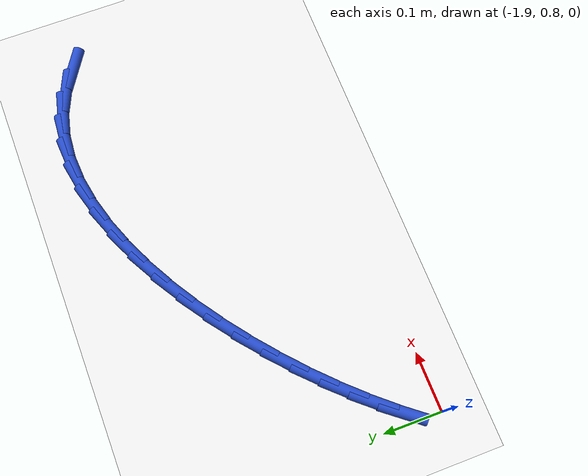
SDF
<sdf version="1.6">
 <world name="default">
  <model name="ground_plane">
   <static>1</static>
   <link name="link">
    <collision name="collision">
     <geometry><plane><normal>0 0 1</normal><size>100 100</size></plane></geometry>
     <surface><friction><ode><mu>100</mu><mu2>50</mu2></ode></friction></surface>
    </collision>
    <visual name="visual">
     <cast_shadows>0</cast_shadows>
     <geometry><plane><normal>0 0 1</normal><size>100 100</size></plane></geometry>
     <material>
      <script><uri>file://media/materials/scripts/gazebo.material</uri><name>Gazebo/WhiteGlow</name></script>
     </material>
    </visual>
   </link>
  </model>
  <model name="line">
   <link name="link_37">
    <pose>-1.1326526851818268 1.16700254844922 0.01 0 1.57 -0.5752461272479498</pose>
    <collision name="collision">
     <geometry><cylinder><radius>0.01</radius><length>0.08</length></cylinder></geometry>
    </collision>
    <visual name="visual">
     <material>
      <script><name>Gazebo/Blue</name><uri>file://media/materials/scripts/gazebo.material</uri></script>
     </material>
     <geometry><cylinder><radius>0.01</radius><length>0.08</length></cylinder></geometry>
    </visual>
   </link>
   <link name="link_38">
    <pose>-1.1695858407124322 1.1909498233782077 0.01 0 1.57 -0.41943407301285196</pose>
    <collision name="collision">
     <geometry><cylinder><radius>0.01</radius><length>0.08</length></cylinder></geometry>
    </collision>
    <visual name="visual">
     <material>
      <script><name>Gazebo/Blue</name><uri>file://media/materials/scripts/gazebo.material</uri></script>
     </material>
     <geometry><cylinder><radius>0.01</radius><length>0.08</length></cylinder></geometry>
    </visual>
   </link>
   <link name="link_39">
    <pose>-1.2085433452273298 1.2083207381532461 0.01 0 1.57 -0.24233388045073406</pose>
    <collision name="collision">
     <geometry><cylinder><radius>0.01</radius><length>0.08</length></cylinder></geometry>
    </collision>
    <visual name="visual">
     <material>
      <script><name>Gazebo/Blue</name><uri>file://media/materials/scripts/gazebo.material</uri></script>
     </material>
     <geometry><cylinder><radius>0.01</radius><length>0.08</length></cylinder></geometry>
    </visual>
   </link>
   <link name="link_40">
    <pose>-1.2496917714463065 1.218492290407449 0.01 0 1.57 -0.0798975234013154</pose>
    <collision name="collision">
     <geometry><cylinder><radius>0.01</radius><length>0.08</length></cylinder></geometry>
    </collision>
    <visual name="visual">
     <material>
      <script><name>Gazebo/Blue</name><uri>file://media/materials/scripts/gazebo.material</uri></script>
     </material>
     <geometry><cylinder><radius>0.01</radius><length>0.08</length></cylinder></geometry>
    </visual>
   </link>
   <link name="link_41">
    <pose>-1.2926835831193815 1.2219345575075304 0.01 0 1.57 0.061800199550257416</pose>
    <collision name="collision">
     <geometry><cylinder><radius>0.01</radius><length>0.08</length></cylinder></geometry>
    </collision>
    <visual name="visual">
     <material>
      <script><name>Gazebo/Blue</name><uri>file://media/materials/scripts/gazebo.material</uri></script>
     </material>
     <geometry><cylinder><radius>0.01</radius><length>0.08</length></cylinder></geometry>
    </visual>
   </link>
   <link name="link_42">
    <pose>-1.3371401974760173 1.2191836267994383 0.01 0 1.57 0.18256268368402495</pose>
    <collision name="collision">
     <geometry><cylinder><radius>0.01</radius><length>0.08</length></cylinder></geometry>
    </collision>
    <visual name="visual">
     <material>
      <script><name>Gazebo/Blue</name><uri>file://media/materials/scripts/gazebo.material</uri></script>
     </material>
     <geometry><cylinder><radius>0.01</radius><length>0.08</length></cylinder></geometry>
    </visual>
   </link>
   <link name="link_43">
    <pose>-1.3826830317456784 1.2107755856291218 0.01 0 1.57 0.28457789872275924</pose>
    <collision name="collision">
     <geometry><cylinder><radius>0.01</radius><length>0.08</length></cylinder></geometry>
    </collision>
    <visual name="visual">
     <material>
      <script><name>Gazebo/Blue</name><uri>file://media/materials/scripts/gazebo.material</uri></script>
     </material>
     <geometry><cylinder><radius>0.01</radius><length>0.08</length></cylinder></geometry>
    </visual>
   </link>
   <link name="link_44">
    <pose>-1.4289335031578272 1.1972465213425292 0.01 0 1.57 0.370886440779815</pose>
    <collision name="collision">
     <geometry><cylinder><radius>0.01</radius><length>0.08</length></cylinder></geometry>
    </collision>
    <visual name="visual">
     <material>
      <script><name>Gazebo/Blue</name><uri>file://media/materials/scripts/gazebo.material</uri></script>
     </material>
     <geometry><cylinder><radius>0.01</radius><length>0.08</length></cylinder></geometry>
    </visual>
   </link>
   <link name="link_45">
    <pose>-1.4755130289419285 1.1791325212856092 0.01 0 1.57 0.44451918354778513</pose>
    <collision name="collision">
     <geometry><cylinder><radius>0.01</radius><length>0.08</length></cylinder></geometry>
    </collision>
    <visual name="visual">
     <material>
      <script><name>Gazebo/Blue</name><uri>file://media/materials/scripts/gazebo.material</uri></script>
     </material>
     <geometry><cylinder><radius>0.01</radius><length>0.08</length></cylinder></geometry>
    </visual>
   </link>
   <link name="link_46">
    <pose>-1.522043026327444 1.1569696728043097 0.01 0 1.57 0.5081495995070204</pose>
    <collision name="collision">
     <geometry><cylinder><radius>0.01</radius><length>0.08</length></cylinder></geometry>
    </collision>
    <visual name="visual">
     <material>
      <script><name>Gazebo/Blue</name><uri>file://media/materials/scripts/gazebo.material</uri></script>
     </material>
     <geometry><cylinder><radius>0.01</radius><length>0.08</length></cylinder></geometry>
    </visual>
   </link>
   <link name="link_47">
    <pose>-1.5681449125438383 1.1312940632445805 0.01 0 1.57 0.5640228785743613</pose>
    <collision name="collision">
     <geometry><cylinder><radius>0.01</radius><length>0.08</length></cylinder></geometry>
    </collision>
    <visual name="visual">
     <material>
      <script><name>Gazebo/Blue</name><uri>file://media/materials/scripts/gazebo.material</uri></script>
     </material>
     <geometry><cylinder><radius>0.01</radius><length>0.08</length></cylinder></geometry>
    </visual>
   </link>
   <link name="link_48">
    <pose>-1.613440104820574 1.1026417799523693 0.01 0 1.57 0.6140038126901969</pose>
    <collision name="collision">
     <geometry><cylinder><radius>0.01</radius><length>0.08</length></cylinder></geometry>
    </collision>
    <visual name="visual">
     <material>
      <script><name>Gazebo/Blue</name><uri>file://media/materials/scripts/gazebo.material</uri></script>
     </material>
     <geometry><cylinder><radius>0.01</radius><length>0.08</length></cylinder></geometry>
    </visual>
   </link>
   <link name="link_49">
    <pose>-1.6575500203871159 1.0715489102736246 0.01 0 1.57 0.6596649655837512</pose>
    <collision name="collision">
     <geometry><cylinder><radius>0.01</radius><length>0.08</length></cylinder></geometry>
    </collision>
    <visual name="visual">
     <material>
      <script><name>Gazebo/Blue</name><uri>file://media/materials/scripts/gazebo.material</uri></script>
     </material>
     <geometry><cylinder><radius>0.01</radius><length>0.08</length></cylinder></geometry>
    </visual>
   </link>
   <link name="link_50">
    <pose>-1.7000960764729265 1.0385515415542952 0.01 0 1.57 0.7023843152716511</pose>
    <collision name="collision">
     <geometry><cylinder><radius>0.01</radius><length>0.08</length></cylinder></geometry>
    </collision>
    <visual name="visual">
     <material>
      <script><name>Gazebo/Blue</name><uri>file://media/materials/scripts/gazebo.material</uri></script>
     </material>
     <geometry><cylinder><radius>0.01</radius><length>0.08</length></cylinder></geometry>
    </visual>
   </link>
   <link name="link_51">
    <pose>-1.740699690307469 1.0041857611403295 0.01 0 1.57 0.7434476590716523</pose>
    <collision name="collision">
     <geometry><cylinder><radius>0.01</radius><length>0.08</length></cylinder></geometry>
    </collision>
    <visual name="visual">
     <material>
      <script><name>Gazebo/Blue</name><uri>file://media/materials/scripts/gazebo.material</uri></script>
     </material>
     <geometry><cylinder><radius>0.01</radius><length>0.08</length></cylinder></geometry>
    </visual>
   </link>
   <link name="link_52">
    <pose>-1.7789829456355228 0.9689869261398266 0.01 0 1.57 0.7843617866977304</pose>
    <collision name="collision">
     <geometry><cylinder><radius>0.01</radius><length>0.08</length></cylinder></geometry>
    </collision>
    <visual name="visual">
     <material>
      <script><name>Gazebo/Blue</name><uri>file://media/materials/scripts/gazebo.material</uri></script>
     </material>
     <geometry><cylinder><radius>0.01</radius><length>0.08</length></cylinder></geometry>
    </visual>
   </link>
   <link name="link_53">
    <pose>-1.8147190945266025 0.9333247728120583 0.01 0 1.57 0.8260778291966491</pose>
    <collision name="collision">
     <geometry><cylinder><radius>0.01</radius><length>0.08</length></cylinder></geometry>
    </collision>
    <visual name="visual">
     <material>
      <script><name>Gazebo/Blue</name><uri>file://media/materials/scripts/gazebo.material</uri></script>
     </material>
     <geometry><cylinder><radius>0.01</radius><length>0.08</length></cylinder></geometry>
    </visual>
   </link>
   <link name="link_54">
    <pose>-1.8480236449829905 0.8971940599320922 0.01 0 1.57 0.8682398692474244</pose>
    <collision name="collision">
     <geometry><cylinder><radius>0.01</radius><length>0.08</length></cylinder></geometry>
    </collision>
    <visual name="visual">
     <material>
      <script><name>Gazebo/Blue</name><uri>file://media/materials/scripts/gazebo.material</uri></script>
     </material>
     <geometry><cylinder><radius>0.01</radius><length>0.08</length></cylinder></geometry>
    </visual>
   </link>
   <link name="link_55">
    <pose>-1.879059196159233 0.8605379529493156 0.01 0 1.57 0.9103222837495785</pose>
    <collision name="collision">
     <geometry><cylinder><radius>0.01</radius><length>0.08</length></cylinder></geometry>
    </collision>
    <visual name="visual">
     <material>
      <script><name>Gazebo/Blue</name><uri>file://media/materials/scripts/gazebo.material</uri></script>
     </material>
     <geometry><cylinder><radius>0.01</radius><length>0.08</length></cylinder></geometry>
    </visual>
   </link>
  </model>
 </world>
</sdf>
